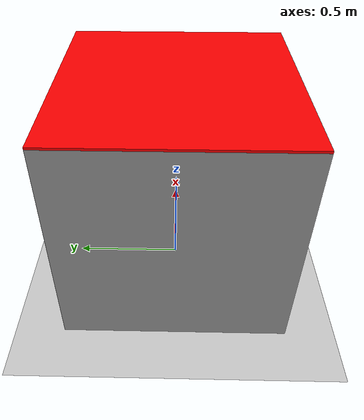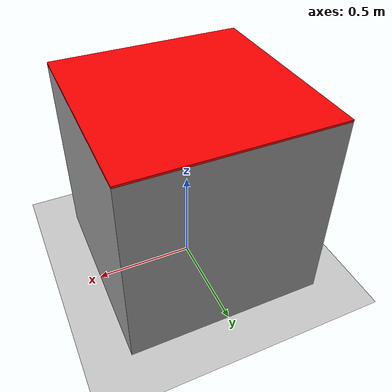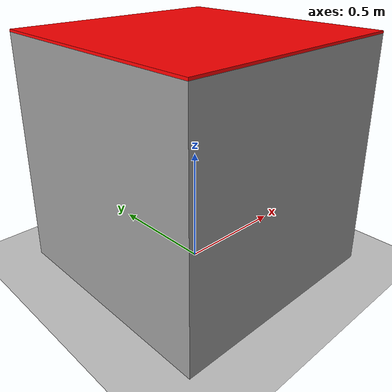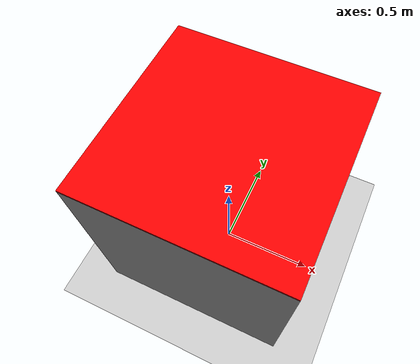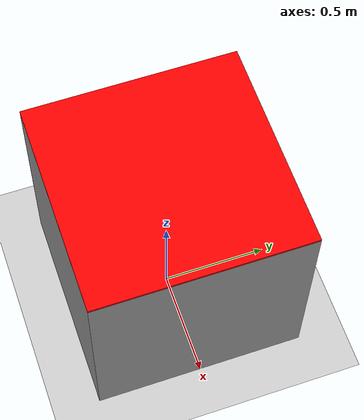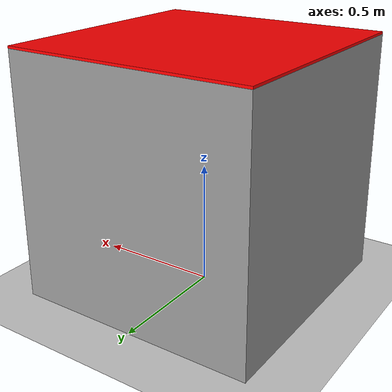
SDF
<?xml version="1.0" ?>
<sdf version="1.6">
  <world name="simple_world">
    <include>
      <uri>model://ground_plane</uri>
    </include>
    <include>
      <uri>model://sun</uri>
    </include>
    <model name="cube">
      <pose>0 0 0.5 0 0 0</pose>
      <link name="cube_link">
        <!-- Entire cube body (gray) -->
        <visual name="cube_body_visual">
          <pose>0 0 0 0 0 0</pose>
          <geometry>
            <box>
              <size>1 1 1</size>
            </box>
          </geometry>
          <material>
            <script>
              <uri>file://media/materials/scripts/gazebo.material</uri>
              <name>Gazebo/Grey</name>
            </script>
          </material>
        </visual>
        <!-- Top face (red, slightly thicker and offset) -->
        <visual name="cube_top_visual">
          <pose>0 0 0.505 0 0 0</pose>
          <geometry>
            <box>
              <size>1 1 0.01</size>
            </box>
          </geometry>
          <material>
            <diffuse>1 0 0 1</diffuse>
            <ambient>1 0 0 1</ambient>
          </material>
        </visual>
        <collision name="cube_collision">
          <geometry>
            <box>
              <size>1 1 1</size>
            </box>
          </geometry>
        </collision>
      </link>
    </model>
  </world>
</sdf>
